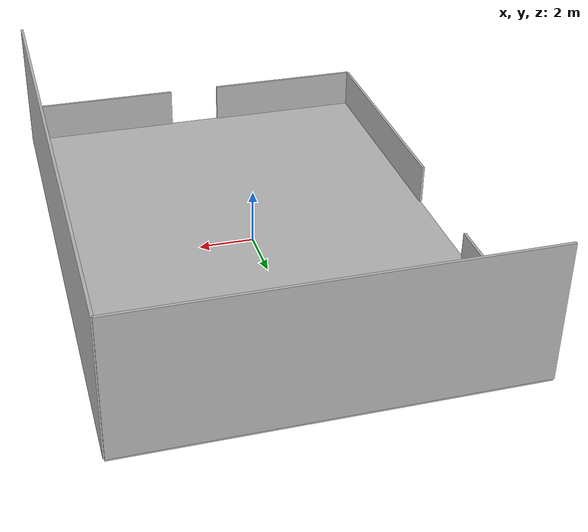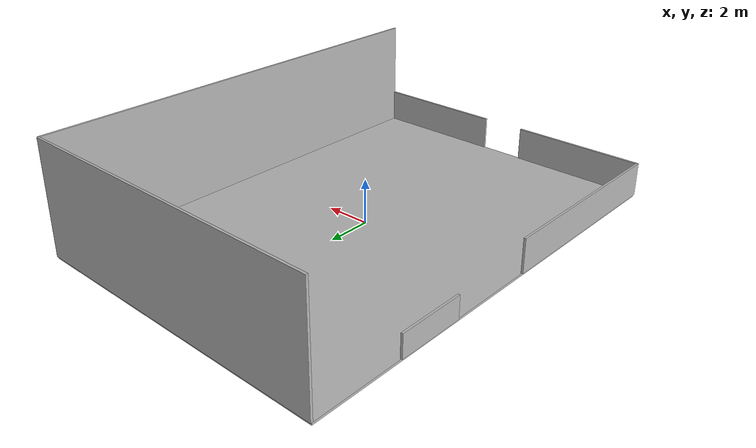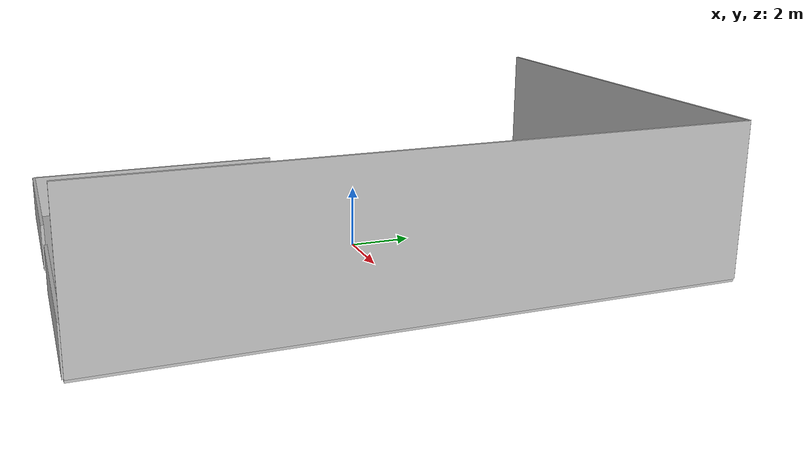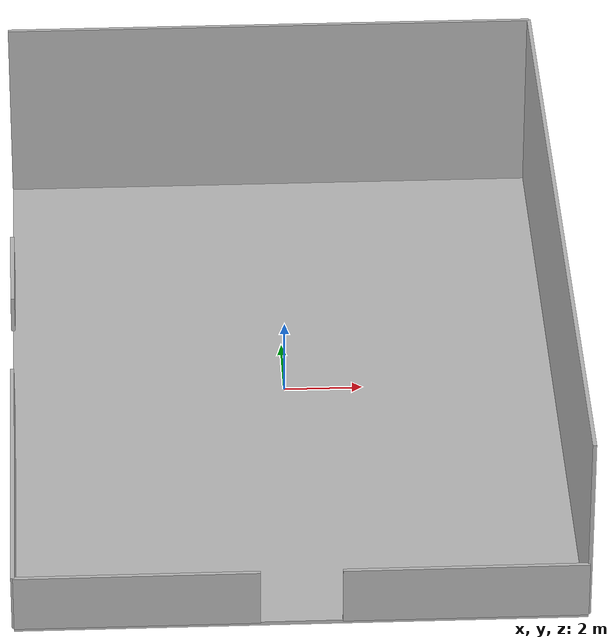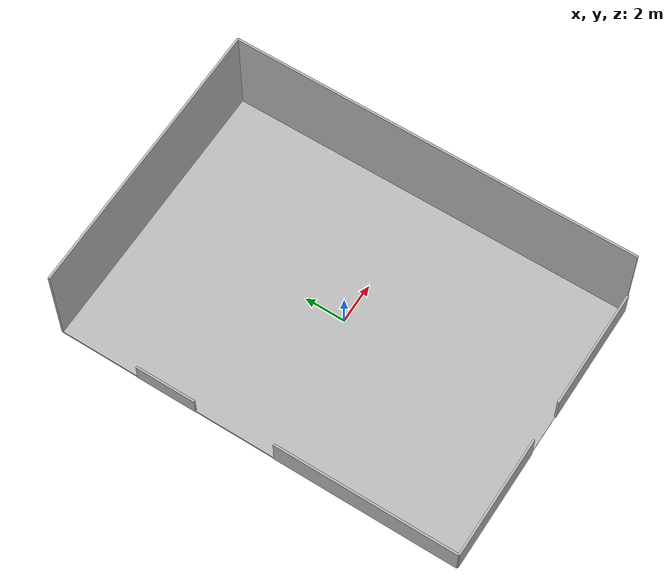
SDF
<sdf version="1.4">
 <world name="flightarena">
  <spherical_coordinates>
   <surface_model>EARTH_WGS84</surface_model>
   <latitude_deg>51.4233628</latitude_deg>
   <longitude_deg>-2.671671</longitude_deg>
   <elevation>100.0</elevation>
  </spherical_coordinates>
  <include><uri>model://sun</uri></include>
  <frame name="origin"><pose>-1.0 0 0 0 0 0</pose></frame>
  <model name="ceiling">
   <pose relative_to="origin">0 0 5.0 0 0 0</pose>
   <static>1</static>
   <link name="body">
    <collision name="geom_1"><geometry><box><size>14 20 0.1 0 0 0</size></box></geometry></collision>
   </link>
  </model>
  <model name="Floor">
   <pose relative_to="origin">0 0 -0.05 0 0 0</pose>
   <static>1</static>
   <link name="body">
    <collision name="geom_1"><geometry><box><size>14 20 0.1 0 0 0</size></box></geometry></collision>
    <visual name="floor">
     <geometry><box><size>14 20 0.1 0 0 0</size></box></geometry>
     <material><script>Gazebo/Grey</script></material>
    </visual>
   </link>
  </model>
  <model name="north_wall">
   <pose relative_to="origin">7.0 0.0 2.5 0 0 0</pose>
   <static>1</static>
   <link name="body">
    <collision name="geom_1"><geometry><box><size>0.1 20.0 5.0 0 0 0</size></box></geometry></collision>
    <visual name="wall_n">
     <geometry><box><size>0.1 20.0 5.0 0 0 0</size></box></geometry>
     <material><script>Gazebo/White</script></material>
    </visual>
   </link>
  </model>
  <model name="west_wall">
   <pose relative_to="origin">0.0 10.0 2.5 0 0 0</pose>
   <static>1</static>
   <link name="body">
    <collision name="geom_1"><geometry><box><size>14.0 0.1 5.0 0 0 0</size></box></geometry></collision>
    <visual name="wall_w">
     <geometry><box><size>14.0 0.1 5.0 0 0 0</size></box></geometry>
     <material><script>Gazebo/PaintedWall</script></material>
    </visual>
   </link>
  </model>
  <model name="east_wall1">
   <pose relative_to="origin">4 -10.0 0.75 0 0 0</pose>
   <static>1</static>
   <link name="body">
    <collision name="geom_1"><geometry><box><size>6.0 0.1 1.5 0 0 0</size></box></geometry></collision>
    <visual name="wall_e1">
     <geometry><box><size>6.0 0.1 1.5 0 0 0</size></box></geometry>
     <material><script>Gazebo/Grey</script></material>
    </visual>
   </link>
  </model>
  <model name="east_wall2">
   <pose relative_to="origin">-4 -10.0 0.75 0 0 0</pose>
   <static>1</static>
   <link name="body">
    <collision name="geom_1"><geometry><box><size>6.0 0.1 1.5 0 0 0</size></box></geometry></collision>
    <visual name="wall_e2">
     <geometry><box><size>6.0 0.1 1.5 0 0 0</size></box></geometry>
     <material><script>Gazebo/Grey</script></material>
    </visual>
   </link>
  </model>
  <model name="south_wall1">
   <pose relative_to="origin">-7 4.5 0.5 0 0 0</pose>
   <static>1</static>
   <link name="body">
    <collision name="geom_1"><geometry><box><size>0.1 3.0 1.0 0 0 0</size></box></geometry></collision>
    <visual name="wall_s">
     <geometry><box><size>0.1 3.0 1.0 0 0 0</size></box></geometry>
     <material><script>Gazebo/Black</script></material>
    </visual>
   </link>
  </model>
  <model name="south_wall2">
   <pose relative_to="origin">-7 -5.5 0.75 0 0 0</pose>
   <static>1</static>
   <link name="body">
    <collision name="geom_1"><geometry><box><size>0.1 9.0 1.5 0 0 0</size></box></geometry></collision>
    <visual name="wall_s">
     <geometry><box><size>0.1 9.0 1.5 0 0 0</size></box></geometry>
     <material><script>Gazebo/Black</script></material>
    </visual>
   </link>
  </model>
 </world>
</sdf>
